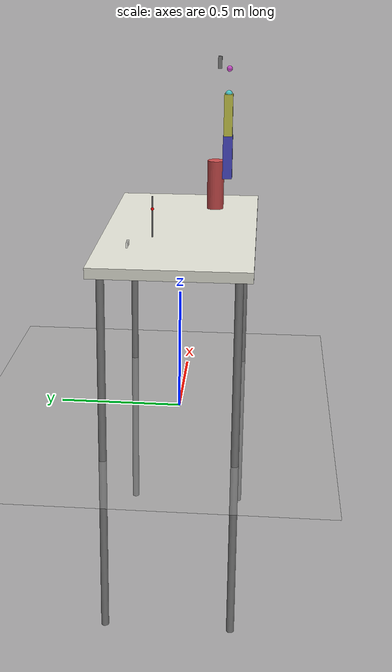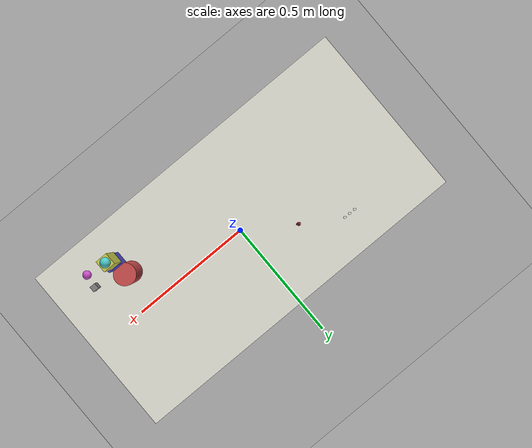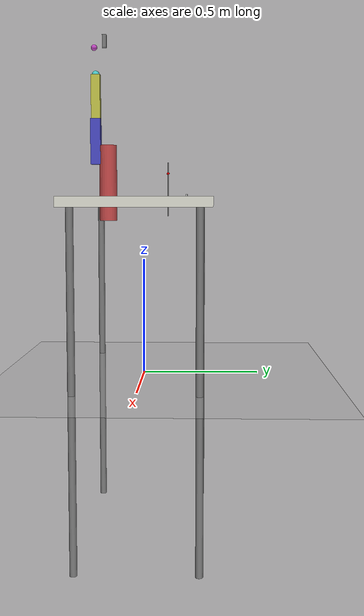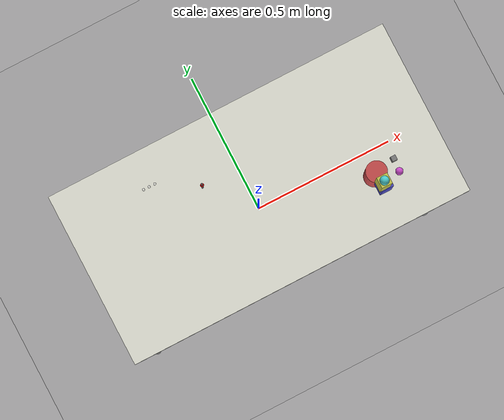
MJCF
<mujoco model="BMS Lab - CityU">
  <compiler angle="degree"/>

  <default>
    <geom type="box" density="500"/>
  </default>

  <worldbody>
    <light pos="2 2 3" directional="true" diffuse="1 1 1"/>
    <light pos="-2 -2 3" directional="true" diffuse=".6 .6 .6"/>

    <!-- Floor -->
    <geom name="floor" type="plane" size="2 2 0.01" rgba=".7 .7 .7 1"/>

    <!-- Lab Table -->
    <body name="table" pos="0 0 0.75">
      <geom name="table_top" type="box" size="0.6 0.3 0.02" rgba=".9 .9 .85 1"/>
      <geom name="leg1" type="cylinder" size="0.015 0.73" rgba=".5 .5 .5 1" pos="-0.55 -0.25 -0.75"/>
      <geom name="leg2" type="cylinder" size="0.015 0.73" rgba=".5 .5 .5 1" pos="0.55 -0.25 -0.75"/>
      <geom name="leg3" type="cylinder" size="0.015 0.73" rgba=".5 .5 .5 1" pos="-0.55 0.25 -0.75"/>
      <geom name="leg4" type="cylinder" size="0.015 0.73" rgba=".5 .5 .5 1" pos="0.55 0.25 -0.75"/>

      <!-- Red dot target on stand (on table) -->
      <body name="target_stand" pos="-0.15 0.1 0">
        <geom name="stand_pole" type="cylinder" size="0.003 0.12" rgba=".4 .4 .4 1" pos="0 0 0.06"/>
        <geom name="red_dot" type="sphere" size="0.006" rgba="1 0 0 1" pos="0 0 0.13"/>
      </body>

      <!-- Petri dish (on table) -->
      <body name="petri_dish" pos="-0.35 -0.15 0">
        <geom type="cylinder" size="0.025 0.004" rgba=".85 .85 .9 0.6"/>
      </body>

      <!-- Tube rack (on table) -->
      <body name="tube_rack" pos="-0.3 0.18 0">
        <geom type="box" size="0.04 0.015 0.01" rgba=".3 .5 .8 1"/>
        <geom name="t1" type="cylinder" size="0.004 0.02" rgba=".9 .9 .9 0.5" pos="-0.02 0 0.02"/>
        <geom name="t2" type="cylinder" size="0.004 0.02" rgba=".9 .9 .9 0.5" pos="0 0 0.02"/>
        <geom name="t3" type="cylinder" size="0.004 0.02" rgba=".9 .9 .9 0.5" pos="0.02 0 0.02"/>
      </body>

      <!-- ===== MyCobot Pro 450 Arm on table ===== -->
      <body name="arm_base" pos="0.35 -0.12 0">
        <geom type="cylinder" size="0.05 0.01" rgba=".6 .6 .6 1"/>
        <geom type="cylinder" size="0.035 0.15" rgba=".8 .3 .3 1" pos="0 0 0.075"/>

        <body name="link1" pos="0 0 0.15">
          <geom size="0.025" type="sphere" rgba=".3 .8 .3 1"/>
          <joint name="joint1" type="hinge" axis="0 0 1" limited="true" range="-162 162"/>

          <body name="link2" pos="0 -0.048 0">
            <geom fromto="0 0 0 0 0 0.180" size="0.02" rgba=".3 .3 .8 1"/>
            <joint name="joint2" type="hinge" axis="0 1 0" limited="true" range="-125 125"/>

            <body name="link3" pos="-0.010 0 0.180">
              <geom fromto="0 0 0 0 0 0.173" size="0.018" rgba=".8 .8 .3 1"/>
              <joint name="joint3" type="hinge" axis="0 1 0" limited="true" range="-154 154"/>

              <body name="link4" pos="0 0 0.173">
                <geom size="0.015" type="sphere" rgba=".3 .8 .8 1"/>
                <joint name="joint4" type="hinge" axis="1 0 0" limited="true" range="-162 162"/>

                <body name="link5" pos="0.0455 0 0.097">
                  <geom size="0.012" type="sphere" rgba=".8 .3 .8 1"/>
                  <joint name="joint5" type="hinge" axis="0 1 0" limited="true" range="-162 162"/>

                  <body name="link6" pos="0 0.040 0">
                    <geom fromto="0 0 0 0 0 0.05" size="0.008" rgba=".5 .5 .5 1"/>
                    <joint name="joint6" type="hinge" axis="1 0 0" limited="true" range="-165 165"/>
                  </body>
                </body>
              </body>
            </body>
          </body>
        </body>
      </body>
    </body>
  </worldbody>
</mujoco>
